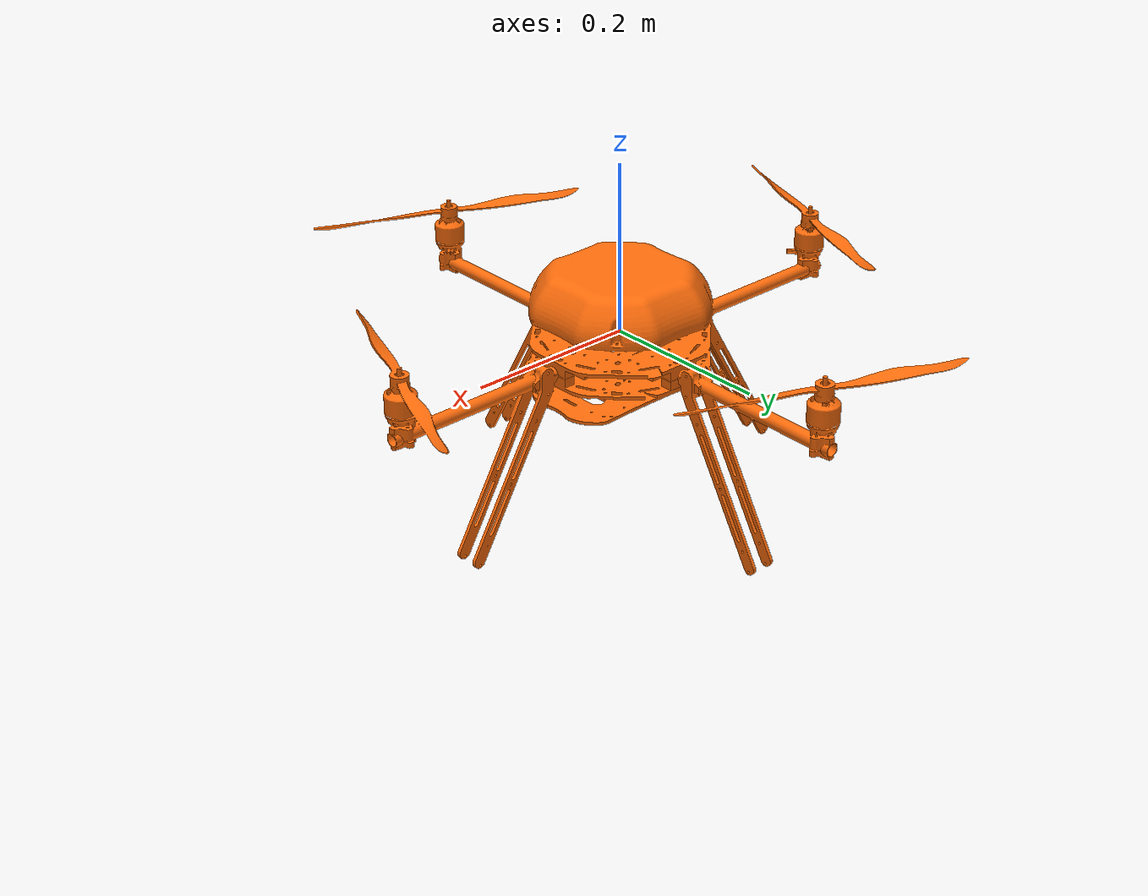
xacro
<?xml version="1.0"?>

<robot
  name="quadrotor"
  xmlns:xacro="http://ros.org/wiki/xacro"
>

    <!-- Included URDF Files -->
    <xacro:include filename="$(find quad_urdf)/urdf/quadrotor_base.urdf.xacro"/>

    <!-- Instantiate quadrotor_base_macro once (has no parameters atm) -->
    <xacro:quadrotor_base_macro />

</robot>

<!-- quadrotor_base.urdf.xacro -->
<robot xmlns:xacro="http://ros.org/wiki/xacro">

  <xacro:property name="pi" value="3.1415926535897931" />

  <!-- Main quadrotor link -->
  <xacro:macro name="quadrotor_base_macro">

    <link name="base_link">
      <visual>
        <origin xyz="0 0 0" rpy="-${pi/2.0} ${pi} 0" />
        <geometry>
      	  <mesh filename="package://quad_urdf/models/quad.stl"
      		scale="0.001 0.001 0.001"/>
        </geometry>
	     <material name="orange">
	       <color rgba="${255/255} ${108/255} ${10/255} 1.0"/>
	     </material>
      </visual>

      <collision>
        <origin xyz="0 0 0" rpy="-${pi/2.0} ${pi} 0" />
        <geometry>
	  <mesh filename="package://quad_urdf/models/quad.stl"
		scale="0.001 0.001 0.001"/>
        </geometry>
      </collision>

      <gazebo reference="base_link">
	       <material>Gazebo/Orange</material>
      </gazebo>
    </link>

    <link name="base_inertia">
      <inertial>
        <mass value="1.600" />
        <origin xyz="0 0 0" />
        <inertia ixx="0.0233" ixy="0.0" ixz="0.0" iyy="0.0212" iyz="0.0" izz="0.0147" />
      </inertial>
  </link>

  <joint name="base_inertia_joint" type="fixed">
    <origin xyz="0 0 0" rpy="0 0 0" />
    <parent link="base_link" />
    <child link="base_inertia" />
  </joint>

  </xacro:macro>

</robot>
